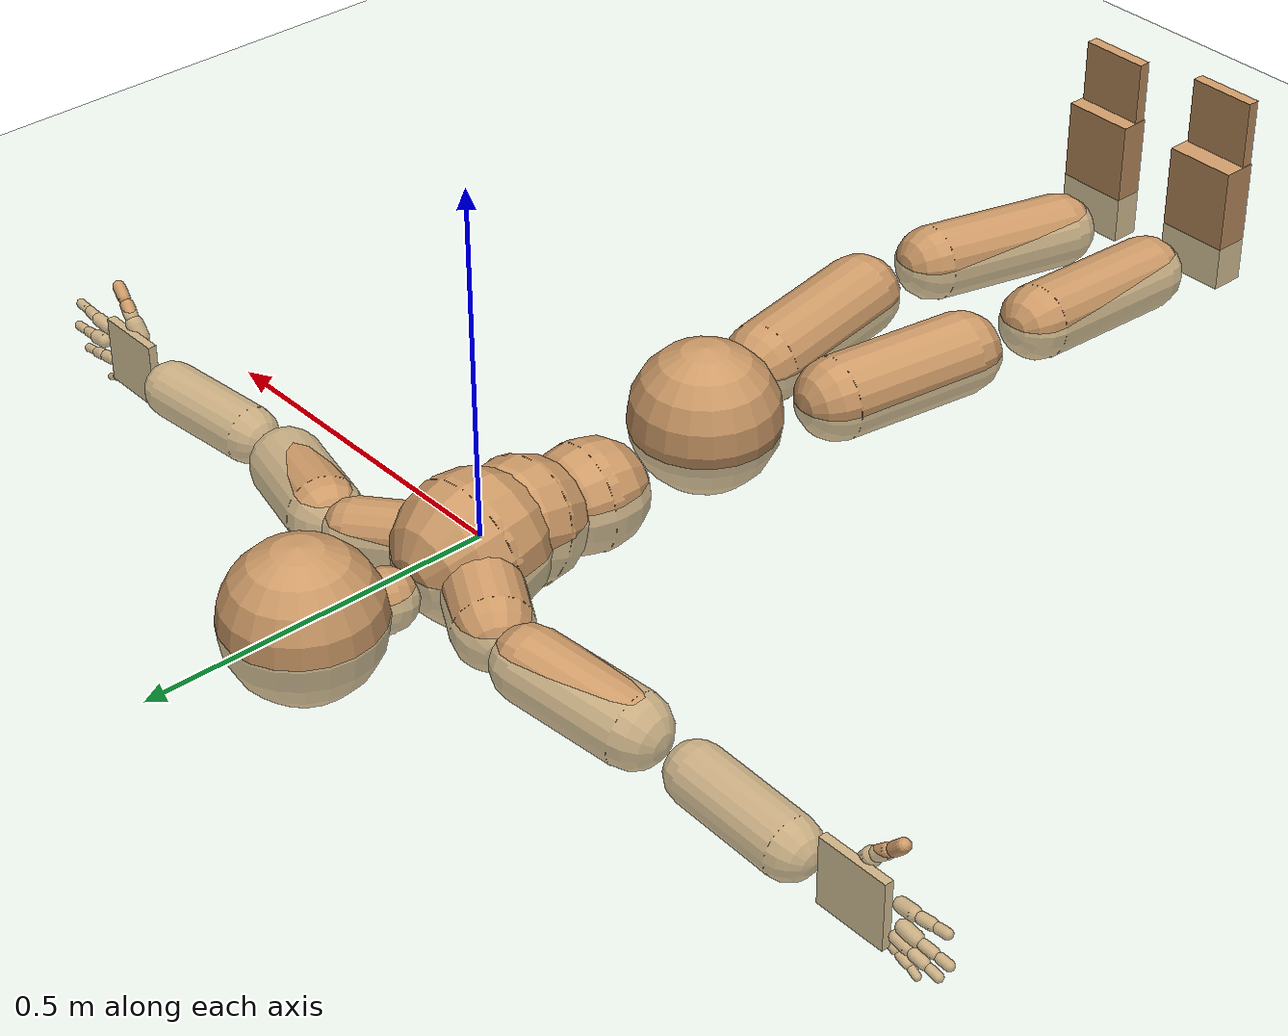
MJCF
<mujoco model="humanoid">
  <compiler coordinate="local"/>
  <default>
    <joint damping="0.0" armature="0.01" stiffness="0.0" limited="true"/>
    <geom conaffinity="1" condim="3" contype="7" margin="0.001" rgba="0.8 0.6 .4 1"/>
  </default>
  <asset>
    <texture type="skybox" builtin="gradient" rgb1=".4 .5 .6" rgb2="0 0 0" width="100" height="100"/>
    <texture builtin="flat" height="1278" mark="cross" markrgb="1 1 1" name="texgeom" random="0.01" rgb1="0.8 0.6 0.4" rgb2="0.8 0.6 0.4" type="cube" width="127"/>
    <texture builtin="checker" height="100" name="texplane" rgb1="0 0 0" rgb2="0.8 0.8 0.8" type="2d" width="100"/>
    <material name="MatPlane" reflectance="0.5" shininess="1" specular="1" texrepeat="60 60" texture="texplane"/>
    <material name="geom" texture="texgeom" texuniform="true"/>
  </asset>
  <worldbody>
    <light cutoff="100" diffuse="1 1 1" dir="-0 0 -1.3" directional="true" exponent="1" pos="0 0 1.3" specular=".1 .1 .1"/>
    <geom conaffinity="1" condim="3" name="floor" pos="0 0 0" rgba="0.8 0.9 0.8 1" size="100 100 .2" type="plane" material="MatPlane"/>
    <body name="Pelvis" pos="0.0013 -0.38 0.0136">
      <freejoint name="Pelvis"/>
      <geom type="sphere" contype="1" conaffinity="1" density="4629.6296296296305" size="0.1049" pos="0.0000 0.0000 0.0000" name="Pelvis"/>
      <body name="L_Hip" pos="0.0549 -0.0969 -0.0231">
        <joint name="L_Hip_x" type="hinge" pos="0 0 0" axis="1 0 0" stiffness="800" damping="80" armature="0.02" range="-90.0000 90.0000"/>
        <joint name="L_Hip_y" type="hinge" pos="0 0 0" axis="0 1 0" stiffness="800" damping="80" armature="0.02" range="-90.0000 90.0000"/>
        <joint name="L_Hip_z" type="hinge" pos="0 0 0" axis="0 0 1" stiffness="800" damping="80" armature="0.02" range="-90.0000 90.0000"/>
        <geom type="capsule" contype="1" conaffinity="1" density="2040.816327" fromto="0.0127 -0.0722 0.0007 0.0506 -0.2888 0.0028" size="0.0591" name="L_Hip"/>
        <body name="L_Knee" pos="0.0633 -0.361 0.0035">
          <joint name="L_Knee_x" type="hinge" pos="0 0 0" axis="1 0 0" stiffness="800" damping="80" armature="0.02" range="-180.0000 180.0000"/>
          <joint name="L_Knee_y" type="hinge" pos="0 0 0" axis="0 1 0" stiffness="800" damping="80" armature="0.02" range="-5.6250 5.6250"/>
          <joint name="L_Knee_z" type="hinge" pos="0 0 0" axis="0 0 1" stiffness="800" damping="80" armature="0.02" range="-5.6250 5.6250"/>
          <geom type="capsule" contype="1" conaffinity="1" density="1234.567901" fromto="-0.0099 -0.0777 -0.0077 -0.0395 -0.3108 -0.0309" size="0.0544" name="L_Knee"/>
          <body name="L_Ankle" pos="-0.0493 -0.3885 -0.0386">
            <joint name="L_Ankle_x" type="hinge" pos="0 0 0" axis="1 0 0" stiffness="800" damping="80" armature="0.02" range="-90.0000 90.0000"/>
            <joint name="L_Ankle_y" type="hinge" pos="0 0 0" axis="0 1 0" stiffness="800" damping="80" armature="0.02" range="-90.0000 90.0000"/>
            <joint name="L_Ankle_z" type="hinge" pos="0 0 0" axis="0 0 1" stiffness="800" damping="80" armature="0.02" range="-90.0000 90.0000"/>
            <geom type="box" contype="1" conaffinity="1" density="1000.000015" pos="0.0221 -0.0286 0.0672" size="0.053 0.0211 0.0945" quat="1.0000 0.0000 0.0000 0.0000" name="L_Ankle"/>
            <body name="L_Toe" pos="0.0442 -0.0571 0.1344">
              <joint name="L_Toe_x" type="hinge" pos="0 0 0" axis="1 0 0" stiffness="500" damping="50" armature="0.02" range="-90.0000 90.0000"/>
              <joint name="L_Toe_y" type="hinge" pos="0 0 0" axis="0 1 0" stiffness="500" damping="50" armature="0.02" range="-45.0000 45.0000"/>
              <joint name="L_Toe_z" type="hinge" pos="0 0 0" axis="0 0 1" stiffness="500" damping="50" armature="0.02" range="-45.0000 45.0000"/>
              <geom type="box" contype="1" conaffinity="1" density="1000.000007" pos="-0.0221 0.0165 0.0682" size="0.0511 0.009 0.0525" quat="1.0000 0.0000 0.0000 0.0000" name="L_Toe"/>
            </body>
          </body>
        </body>
      </body>
      <body name="R_Hip" pos="-0.0564 -0.1082 -0.0163">
        <joint name="R_Hip_x" type="hinge" pos="0 0 0" axis="1 0 0" stiffness="800" damping="80" armature="0.02" range="-90.0000 90.0000"/>
        <joint name="R_Hip_y" type="hinge" pos="0 0 0" axis="0 1 0" stiffness="800" damping="80" armature="0.02" range="-90.0000 90.0000"/>
        <joint name="R_Hip_z" type="hinge" pos="0 0 0" axis="0 0 1" stiffness="800" damping="80" armature="0.02" range="-90.0000 90.0000"/>
        <geom type="capsule" contype="1" conaffinity="1" density="2040.816327" fromto="-0.0094 -0.0689 -0.0009 -0.0375 -0.2756 -0.0035" size="0.059" name="R_Hip"/>
        <body name="R_Knee" pos="-0.0468 -0.3445 -0.0044">
          <joint name="R_Knee_x" type="hinge" pos="0 0 0" axis="1 0 0" stiffness="800" damping="80" armature="0.02" range="-180.0000 180.0000"/>
          <joint name="R_Knee_y" type="hinge" pos="0 0 0" axis="0 1 0" stiffness="800" damping="80" armature="0.02" range="-5.6250 5.6250"/>
          <joint name="R_Knee_z" type="hinge" pos="0 0 0" axis="0 0 1" stiffness="800" damping="80" armature="0.02" range="-5.6250 5.6250"/>
          <geom type="capsule" contype="1" conaffinity="1" density="1234.567901" fromto="0.0039 -0.0801 -0.0074 0.0157 -0.3205 -0.0298" size="0.0541" name="R_Knee"/>
          <body name="R_Ankle" pos="0.0196 -0.4006 -0.0372">
            <joint name="R_Ankle_x" type="hinge" pos="0 0 0" axis="1 0 0" stiffness="800" damping="80" armature="0.02" range="-90.0000 90.0000"/>
            <joint name="R_Ankle_y" type="hinge" pos="0 0 0" axis="0 1 0" stiffness="800" damping="80" armature="0.02" range="-90.0000 90.0000"/>
            <joint name="R_Ankle_z" type="hinge" pos="0 0 0" axis="0 0 1" stiffness="800" damping="80" armature="0.02" range="-90.0000 90.0000"/>
            <geom type="box" contype="1" conaffinity="1" density="999.999987" pos="-0.0172 -0.0282 0.0707" size="0.053 0.0252 0.0945" quat="1.0000 0.0000 0.0000 0.0000" name="R_Ankle"/>
            <body name="R_Toe" pos="-0.0344 -0.0564 0.1413">
              <joint name="R_Toe_x" type="hinge" pos="0 0 0" axis="1 0 0" stiffness="500" damping="50" armature="0.02" range="-90.0000 90.0000"/>
              <joint name="R_Toe_y" type="hinge" pos="0 0 0" axis="0 1 0" stiffness="500" damping="50" armature="0.02" range="-45.0000 45.0000"/>
              <joint name="R_Toe_z" type="hinge" pos="0 0 0" axis="0 0 1" stiffness="500" damping="50" armature="0.02" range="-45.0000 45.0000"/>
              <geom type="box" contype="1" conaffinity="1" density="1000.000005" pos="0.0172 0.0118 0.0717" size="0.0511 0.0088 0.0525" quat="1.0000 0.0000 0.0000 0.0000" name="R_Toe"/>
            </body>
          </body>
        </body>
      </body>
      <body name="Torso" pos="-0.0026 0.1184 -0.0391">
        <joint name="Torso_x" type="hinge" pos="0 0 0" axis="1 0 0" stiffness="1000" damping="100" armature="0.02" range="-60.0000 60.0000"/>
        <joint name="Torso_y" type="hinge" pos="0 0 0" axis="0 1 0" stiffness="1000" damping="100" armature="0.02" range="-60.0000 60.0000"/>
        <joint name="Torso_z" type="hinge" pos="0 0 0" axis="0 0 1" stiffness="1000" damping="100" armature="0.02" range="-60.0000 60.0000"/>
        <geom type="capsule" contype="1" conaffinity="1" density="2040.816327" fromto="0.0053 0.0733 0.0010 0.0065 0.0896 0.0012" size="0.0759" name="Torso"/>
        <body name="Spine" pos="0.0118 0.1628 0.0022">
          <joint name="Spine_x" type="hinge" pos="0 0 0" axis="1 0 0" stiffness="1000" damping="100" armature="0.02" range="-60.0000 60.0000"/>
          <joint name="Spine_y" type="hinge" pos="0 0 0" axis="0 1 0" stiffness="1000" damping="100" armature="0.02" range="-60.0000 60.0000"/>
          <joint name="Spine_z" type="hinge" pos="0 0 0" axis="0 0 1" stiffness="1000" damping="100" armature="0.02" range="-60.0000 60.0000"/>
          <geom type="capsule" contype="1" conaffinity="1" density="2040.816327" fromto="-0.0043 0.0272 0.0088 -0.0053 0.0332 0.0107" size="0.0883" name="Spine"/>
          <body name="Chest" pos="-0.0096 0.0604 0.0195">
            <joint name="Chest_x" type="hinge" pos="0 0 0" axis="1 0 0" stiffness="1000" damping="100" armature="0.02" range="-60.0000 60.0000"/>
            <joint name="Chest_y" type="hinge" pos="0 0 0" axis="0 1 0" stiffness="1000" damping="100" armature="0.02" range="-60.0000 60.0000"/>
            <joint name="Chest_z" type="hinge" pos="0 0 0" axis="0 0 1" stiffness="1000" damping="100" armature="0.02" range="-60.0000 60.0000"/>
            <geom type="capsule" contype="1" conaffinity="1" density="2040.816327" fromto="-0.0018 0.0470 -0.0052 -0.0022 0.0574 -0.0064" size="0.1014" name="Chest"/>
            <body name="Neck" pos="-0.0086 0.162 -0.023">
              <joint name="Neck_x" type="hinge" pos="0 0 0" axis="1 0 0" stiffness="500" damping="50" armature="0.02" range="-180.0000 180.0000"/>
              <joint name="Neck_y" type="hinge" pos="0 0 0" axis="0 1 0" stiffness="500" damping="50" armature="0.02" range="-180.0000 180.0000"/>
              <joint name="Neck_z" type="hinge" pos="0 0 0" axis="0 0 1" stiffness="500" damping="50" armature="0.02" range="-180.0000 180.0000"/>
              <geom type="capsule" contype="1" conaffinity="1" density="1000" fromto="0.0045 0.0277 0.0041 0.0181 0.1108 0.0165" size="0.0429" name="Neck"/>
              <body name="Head" pos="0.0226 0.1385 0.0206">
                <joint name="Head_x" type="hinge" pos="0 0 0" axis="1 0 0" stiffness="500" damping="50" armature="0.02" range="-90.0000 90.0000"/>
                <joint name="Head_y" type="hinge" pos="0 0 0" axis="0 1 0" stiffness="500" damping="50" armature="0.02" range="-90.0000 90.0000"/>
                <joint name="Head_z" type="hinge" pos="0 0 0" axis="0 0 1" stiffness="500" damping="50" armature="0.02" range="-90.0000 90.0000"/>
                <geom type="sphere" contype="1" conaffinity="1" density="1000" size="0.1076" pos="0.0000 0.0000 0.0000" name="Head"/>
              </body>
            </body>
            <body name="L_Thorax" pos="0.0379 0.0752 -0.004">
              <joint name="L_Thorax_x" type="hinge" pos="0 0 0" axis="1 0 0" stiffness="500" damping="50" armature="0.02" range="-180.0000 180.0000"/>
              <joint name="L_Thorax_y" type="hinge" pos="0 0 0" axis="0 1 0" stiffness="500" damping="50" armature="0.02" range="-180.0000 180.0000"/>
              <joint name="L_Thorax_z" type="hinge" pos="0 0 0" axis="0 0 1" stiffness="500" damping="50" armature="0.02" range="-180.0000 180.0000"/>
              <geom type="capsule" contype="1" conaffinity="1" density="1000" fromto="0.0250 0.0131 -0.0042 0.1001 0.0524 -0.0168" size="0.0455" name="L_Thorax"/>
              <body name="L_Shoulder" pos="0.1251 0.0655 -0.021">
                <joint name="L_Shoulder_x" type="hinge" pos="0 0 0" axis="1 0 0" stiffness="500" damping="50" armature="0.02" range="-180.0000 180.0000"/>
                <joint name="L_Shoulder_y" type="hinge" pos="0 0 0" axis="0 1 0" stiffness="500" damping="50" armature="0.02" range="-180.0000 180.0000"/>
                <joint name="L_Shoulder_z" type="hinge" pos="0 0 0" axis="0 0 1" stiffness="500" damping="50" armature="0.02" range="-180.0000 180.0000"/>
                <geom type="capsule" contype="1" conaffinity="1" density="1000" fromto="0.0489 -0.0152 -0.0078 0.1957 -0.0610 -0.0310" size="0.0516" name="L_Shoulder"/>
                <body name="L_Elbow" pos="0.2447 -0.0762 -0.0388">
                  <joint name="L_Elbow_x" type="hinge" pos="0 0 0" axis="1 0 0" stiffness="500" damping="50" armature="0.02" range="-720.0000 720.0000"/>
                  <joint name="L_Elbow_y" type="hinge" pos="0 0 0" axis="0 1 0" stiffness="500" damping="50" armature="0.02" range="-720.0000 720.0000"/>
                  <joint name="L_Elbow_z" type="hinge" pos="0 0 0" axis="0 0 1" stiffness="500" damping="50" armature="0.02" range="-720.0000 720.0000"/>
                  <geom type="capsule" contype="1" conaffinity="1" density="1000" fromto="0.0537 0.0049 -0.0003 0.2149 0.0198 -0.0013" size="0.0403" name="L_Elbow"/>
                  <body name="L_Wrist" pos="0.2686 0.0247 -0.0016">
                    <joint name="L_Wrist_x" type="hinge" pos="0 0 0" axis="1 0 0" stiffness="300" damping="30" armature="0.02" range="-180.0000 180.0000"/>
                    <joint name="L_Wrist_y" type="hinge" pos="0 0 0" axis="0 1 0" stiffness="300" damping="30" armature="0.02" range="-180.0000 180.0000"/>
                    <joint name="L_Wrist_z" type="hinge" pos="0 0 0" axis="0 0 1" stiffness="300" damping="30" armature="0.02" range="-180.0000 180.0000"/>
                    <geom type="box" contype="1" conaffinity="1" density="2541.499907" pos="0.0456 -0.0061 -0.0030" size="0.0516 0.0062 0.0494" quat="1.0000 0.0000 0.0000 0.0000" name="L_Wrist"/>
                    <body name="L_Index1" pos="0.1073 -0.0096 0.0213">
                      <joint name="L_Index1_x" type="hinge" pos="0 0 0" axis="1 0 0" stiffness="100" damping="10" armature="0.02" range="-180.0000 180.0000"/>
                      <joint name="L_Index1_y" type="hinge" pos="0 0 0" axis="0 1 0" stiffness="100" damping="10" armature="0.02" range="-180.0000 180.0000"/>
                      <joint name="L_Index1_z" type="hinge" pos="0 0 0" axis="0 0 1" stiffness="100" damping="10" armature="0.02" range="-180.0000 180.0000"/>
                      <geom type="capsule" contype="1" conaffinity="1" density="1000" fromto="0.0068 0.0003 0.0008 0.0271 0.0013 0.0030" size="0.0097" name="L_Index1"/>
                      <body name="L_Index2" pos="0.0339 0.0016 0.0038">
                        <joint name="L_Index2_x" type="hinge" pos="0 0 0" axis="1 0 0" stiffness="100" damping="10" armature="0.02" range="-180.0000 180.0000"/>
                        <joint name="L_Index2_y" type="hinge" pos="0 0 0" axis="0 1 0" stiffness="100" damping="10" armature="0.02" range="-180.0000 180.0000"/>
                        <joint name="L_Index2_z" type="hinge" pos="0 0 0" axis="0 0 1" stiffness="100" damping="10" armature="0.02" range="-180.0000 180.0000"/>
                        <geom type="capsule" contype="1" conaffinity="1" density="1000" fromto="0.0048 -0.0006 -0.0001 0.0190 -0.0023 -0.0003" size="0.0079" name="L_Index2"/>
                        <body name="L_Index3" pos="0.0238 -0.0028 -0.0004">
                          <joint name="L_Index3_x" type="hinge" pos="0 0 0" axis="1 0 0" stiffness="100" damping="10" armature="0.02" range="-180.0000 180.0000"/>
                          <joint name="L_Index3_y" type="hinge" pos="0 0 0" axis="0 1 0" stiffness="100" damping="10" armature="0.02" range="-180.0000 180.0000"/>
                          <joint name="L_Index3_z" type="hinge" pos="0 0 0" axis="0 0 1" stiffness="100" damping="10" armature="0.02" range="-180.0000 180.0000"/>
                          <geom type="capsule" contype="1" conaffinity="1" density="1000" fromto="0.0052 -0.0002 0.0003 0.0206 -0.0007 0.0013" size="0.0067" name="L_Index3"/>
                        </body>
                      </body>
                    </body>
                    <body name="L_Middle1" pos="0.1154 -0.0066 -0.0034">
                      <joint name="L_Middle1_x" type="hinge" pos="0 0 0" axis="1 0 0" stiffness="100" damping="10" armature="0.02" range="-180.0000 180.0000"/>
                      <joint name="L_Middle1_y" type="hinge" pos="0 0 0" axis="0 1 0" stiffness="100" damping="10" armature="0.02" range="-180.0000 180.0000"/>
                      <joint name="L_Middle1_z" type="hinge" pos="0 0 0" axis="0 0 1" stiffness="100" damping="10" armature="0.02" range="-180.0000 180.0000"/>
                      <geom type="capsule" contype="1" conaffinity="1" density="1000" fromto="0.0065 0.0001 -0.0008 0.0258 0.0004 -0.0034" size="0.01" name="L_Middle1"/>
                      <body name="L_Middle2" pos="0.0323 0.0005 -0.0042">
                        <joint name="L_Middle2_x" type="hinge" pos="0 0 0" axis="1 0 0" stiffness="100" damping="10" armature="0.02" range="-180.0000 180.0000"/>
                        <joint name="L_Middle2_y" type="hinge" pos="0 0 0" axis="0 1 0" stiffness="100" damping="10" armature="0.02" range="-180.0000 180.0000"/>
                        <joint name="L_Middle2_z" type="hinge" pos="0 0 0" axis="0 0 1" stiffness="100" damping="10" armature="0.02" range="-180.0000 180.0000"/>
                        <geom type="capsule" contype="1" conaffinity="1" density="1000" fromto="0.0049 -0.0005 -0.0009 0.0197 -0.0020 -0.0036" size="0.0074" name="L_Middle2"/>
                        <body name="L_Middle3" pos="0.0246 -0.0025 -0.0045">
                          <joint name="L_Middle3_x" type="hinge" pos="0 0 0" axis="1 0 0" stiffness="100" damping="10" armature="0.02" range="-180.0000 180.0000"/>
                          <joint name="L_Middle3_y" type="hinge" pos="0 0 0" axis="0 1 0" stiffness="100" damping="10" armature="0.02" range="-180.0000 180.0000"/>
                          <joint name="L_Middle3_z" type="hinge" pos="0 0 0" axis="0 0 1" stiffness="100" damping="10" armature="0.02" range="-180.0000 180.0000"/>
                          <geom type="capsule" contype="1" conaffinity="1" density="1000" fromto="0.0053 -0.0001 -0.0005 0.0213 -0.0004 -0.0020" size="0.0066" name="L_Middle3"/>
                        </body>
                      </body>
                    </body>
                    <body name="L_Pinky1" pos="0.0884 -0.0152 -0.0469">
                      <joint name="L_Pinky1_x" type="hinge" pos="0 0 0" axis="1 0 0" stiffness="100" damping="10" armature="0.02" range="-180.0000 180.0000"/>
                      <joint name="L_Pinky1_y" type="hinge" pos="0 0 0" axis="0 1 0" stiffness="100" damping="10" armature="0.02" range="-180.0000 180.0000"/>
                      <joint name="L_Pinky1_z" type="hinge" pos="0 0 0" axis="0 0 1" stiffness="100" damping="10" armature="0.02" range="-180.0000 180.0000"/>
                      <geom type="capsule" contype="1" conaffinity="1" density="1000" fromto="0.0034 -0.0004 -0.0024 0.0137 -0.0015 -0.0097" size="0.0072" name="L_Pinky1"/>
                      <body name="L_Pinky2" pos="0.0171 -0.0019 -0.0121">
                        <joint name="L_Pinky2_x" type="hinge" pos="0 0 0" axis="1 0 0" stiffness="100" damping="10" armature="0.02" range="-180.0000 180.0000"/>
                        <joint name="L_Pinky2_y" type="hinge" pos="0 0 0" axis="0 1 0" stiffness="100" damping="10" armature="0.02" range="-180.0000 180.0000"/>
                        <joint name="L_Pinky2_z" type="hinge" pos="0 0 0" axis="0 0 1" stiffness="100" damping="10" armature="0.02" range="-180.0000 180.0000"/>
                        <geom type="capsule" contype="1" conaffinity="1" density="1000" fromto="0.0034 -0.0004 -0.0023 0.0134 -0.0017 -0.0091" size="0.0068" name="L_Pinky2"/>
                        <body name="L_Pinky3" pos="0.0168 -0.0022 -0.0113">
                          <joint name="L_Pinky3_x" type="hinge" pos="0 0 0" axis="1 0 0" stiffness="100" damping="10" armature="0.02" range="-180.0000 180.0000"/>
                          <joint name="L_Pinky3_y" type="hinge" pos="0 0 0" axis="0 1 0" stiffness="100" damping="10" armature="0.02" range="-180.0000 180.0000"/>
                          <joint name="L_Pinky3_z" type="hinge" pos="0 0 0" axis="0 0 1" stiffness="100" damping="10" armature="0.02" range="-180.0000 180.0000"/>
                          <geom type="capsule" contype="1" conaffinity="1" density="1000" fromto="0.0038 -0.0000 -0.0019 0.0150 -0.0001 -0.0075" size="0.0052" name="L_Pinky3"/>
                        </body>
                      </body>
                    </body>
                    <body name="L_Ring1" pos="0.1026 -0.0094 -0.0289">
                      <joint name="L_Ring1_x" type="hinge" pos="0 0 0" axis="1 0 0" stiffness="100" damping="10" armature="0.02" range="-180.0000 180.0000"/>
                      <joint name="L_Ring1_y" type="hinge" pos="0 0 0" axis="0 1 0" stiffness="100" damping="10" armature="0.02" range="-180.0000 180.0000"/>
                      <joint name="L_Ring1_z" type="hinge" pos="0 0 0" axis="0 0 1" stiffness="100" damping="10" armature="0.02" range="-180.0000 180.0000"/>
                      <geom type="capsule" contype="1" conaffinity="1" density="1000" fromto="0.0060 0.0002 -0.0010 0.0239 0.0006 -0.0040" size="0.0085" name="L_Ring1"/>
                      <body name="L_Ring2" pos="0.0298 0.0008 -0.005">
                        <joint name="L_Ring2_x" type="hinge" pos="0 0 0" axis="1 0 0" stiffness="100" damping="10" armature="0.02" range="-180.0000 180.0000"/>
                        <joint name="L_Ring2_y" type="hinge" pos="0 0 0" axis="0 1 0" stiffness="100" damping="10" armature="0.02" range="-180.0000 180.0000"/>
                        <joint name="L_Ring2_z" type="hinge" pos="0 0 0" axis="0 0 1" stiffness="100" damping="10" armature="0.02" range="-180.0000 180.0000"/>
                        <geom type="capsule" contype="1" conaffinity="1" density="1000" fromto="0.0048 -0.0004 -0.0014 0.0192 -0.0018 -0.0055" size="0.0079" name="L_Ring2"/>
                        <body name="L_Ring3" pos="0.024 -0.0022 -0.0068">
                          <joint name="L_Ring3_x" type="hinge" pos="0 0 0" axis="1 0 0" stiffness="100" damping="10" armature="0.02" range="-180.0000 180.0000"/>
                          <joint name="L_Ring3_y" type="hinge" pos="0 0 0" axis="0 1 0" stiffness="100" damping="10" armature="0.02" range="-180.0000 180.0000"/>
                          <joint name="L_Ring3_z" type="hinge" pos="0 0 0" axis="0 0 1" stiffness="100" damping="10" armature="0.02" range="-180.0000 180.0000"/>
                          <geom type="capsule" contype="1" conaffinity="1" density="1000" fromto="0.0052 -0.0000 -0.0010 0.0208 -0.0002 -0.0039" size="0.0061" name="L_Ring3"/>
                        </body>
                      </body>
                    </body>
                    <body name="L_Thumb1" pos="0.0425 -0.0203 0.0275">
                      <joint name="L_Thumb1_x" type="hinge" pos="0 0 0" axis="1 0 0" stiffness="100" damping="10" armature="0.02" range="-180.0000 180.0000"/>
                      <joint name="L_Thumb1_y" type="hinge" pos="0 0 0" axis="0 1 0" stiffness="100" damping="10" armature="0.02" range="-180.0000 180.0000"/>
                      <joint name="L_Thumb1_z" type="hinge" pos="0 0 0" axis="0 0 1" stiffness="100" damping="10" armature="0.02" range="-180.0000 180.0000"/>
                      <geom type="capsule" contype="1" conaffinity="1" density="1000" fromto="0.0035 0.0004 0.0054 0.0141 0.0014 0.0217" size="0.0127" name="L_Thumb1"/>
                      <body name="L_Thumb2" pos="0.0176 0.0018 0.0271">
                        <joint name="L_Thumb2_x" type="hinge" pos="0 0 0" axis="1 0 0" stiffness="100" damping="10" armature="0.02" range="-180.0000 180.0000"/>
                        <joint name="L_Thumb2_y" type="hinge" pos="0 0 0" axis="0 1 0" stiffness="100" damping="10" armature="0.02" range="-180.0000 180.0000"/>
                        <joint name="L_Thumb2_z" type="hinge" pos="0 0 0" axis="0 0 1" stiffness="100" damping="10" armature="0.02" range="-180.0000 180.0000"/>
                        <geom type="capsule" contype="1" conaffinity="1" density="1000" fromto="0.0042 -0.0010 0.0034 0.0170 -0.0040 0.0137" size="0.0101" name="L_Thumb2"/>
                        <body name="L_Thumb3" pos="0.0212 -0.005 0.0171">
                          <joint name="L_Thumb3_x" type="hinge" pos="0 0 0" axis="1 0 0" stiffness="100" damping="10" armature="0.02" range="-180.0000 180.0000"/>
                          <joint name="L_Thumb3_y" type="hinge" pos="0 0 0" axis="0 1 0" stiffness="100" damping="10" armature="0.02" range="-180.0000 180.0000"/>
                          <joint name="L_Thumb3_z" type="hinge" pos="0 0 0" axis="0 0 1" stiffness="100" damping="10" armature="0.02" range="-180.0000 180.0000"/>
                          <geom type="capsule" contype="1" conaffinity="1" density="1000" fromto="0.0046 -0.0006 0.0038 0.0186 -0.0024 0.0153" size="0.0091" name="L_Thumb3"/>
                        </body>
                      </body>
                    </body>
                  </body>
                </body>
              </body>
            </body>
            <body name="R_Thorax" pos="-0.0411 0.0761 -0.0077">
              <joint name="R_Thorax_x" type="hinge" pos="0 0 0" axis="1 0 0" stiffness="500" damping="50" armature="0.02" range="-180.0000 180.0000"/>
              <joint name="R_Thorax_y" type="hinge" pos="0 0 0" axis="0 1 0" stiffness="500" damping="50" armature="0.02" range="-180.0000 180.0000"/>
              <joint name="R_Thorax_z" type="hinge" pos="0 0 0" axis="0 0 1" stiffness="500" damping="50" armature="0.02" range="-180.0000 180.0000"/>
              <geom type="capsule" contype="1" conaffinity="1" density="1000" fromto="-0.0232 0.0124 -0.0031 -0.0930 0.0495 -0.0124" size="0.054" name="R_Thorax"/>
              <body name="R_Shoulder" pos="-0.1162 0.0619 -0.0155">
                <joint name="R_Shoulder_x" type="hinge" pos="0 0 0" axis="1 0 0" stiffness="500" damping="50" armature="0.02" range="-180.0000 180.0000"/>
                <joint name="R_Shoulder_y" type="hinge" pos="0 0 0" axis="0 1 0" stiffness="500" damping="50" armature="0.02" range="-180.0000 180.0000"/>
                <joint name="R_Shoulder_z" type="hinge" pos="0 0 0" axis="0 0 1" stiffness="500" damping="50" armature="0.02" range="-180.0000 180.0000"/>
                <geom type="capsule" contype="1" conaffinity="1" density="1000" fromto="-0.0522 -0.0091 -0.0058 -0.2088 -0.0365 -0.0232" size="0.0509" name="R_Shoulder"/>
                <body name="R_Elbow" pos="-0.261 -0.0456 -0.029">
                  <joint name="R_Elbow_x" type="hinge" pos="0 0 0" axis="1 0 0" stiffness="500" damping="50" armature="0.02" range="-720.0000 720.0000"/>
                  <joint name="R_Elbow_y" type="hinge" pos="0 0 0" axis="0 1 0" stiffness="500" damping="50" armature="0.02" range="-720.0000 720.0000"/>
                  <joint name="R_Elbow_z" type="hinge" pos="0 0 0" axis="0 0 1" stiffness="500" damping="50" armature="0.02" range="-720.0000 720.0000"/>
                  <geom type="capsule" contype="1" conaffinity="1" density="1000" fromto="-0.0520 0.0001 -0.0024 -0.2082 0.0002 -0.0096" size="0.0413" name="R_Elbow"/>
                  <body name="R_Wrist" pos="-0.2602 0.0003 -0.012">
                    <joint name="R_Wrist_x" type="hinge" pos="0 0 0" axis="1 0 0" stiffness="300" damping="30" armature="0.02" range="-180.0000 180.0000"/>
                    <joint name="R_Wrist_y" type="hinge" pos="0 0 0" axis="0 1 0" stiffness="300" damping="30" armature="0.02" range="-180.0000 180.0000"/>
                    <joint name="R_Wrist_z" type="hinge" pos="0 0 0" axis="0 0 1" stiffness="300" damping="30" armature="0.02" range="-180.0000 180.0000"/>
                    <geom type="box" contype="1" conaffinity="1" density="2541.500138" pos="-0.0454 -0.0079 -0.0037" size="0.0531 0.0063 0.0494" quat="1.0000 0.0000 0.0000 0.0000" name="R_Wrist"/>
                    <body name="R_Index1" pos="-0.1068 -0.0131 0.02">
                      <joint name="R_Index1_x" type="hinge" pos="0 0 0" axis="1 0 0" stiffness="100" damping="10" armature="0.02" range="-180.0000 180.0000"/>
                      <joint name="R_Index1_y" type="hinge" pos="0 0 0" axis="0 1 0" stiffness="100" damping="10" armature="0.02" range="-180.0000 180.0000"/>
                      <joint name="R_Index1_z" type="hinge" pos="0 0 0" axis="0 0 1" stiffness="100" damping="10" armature="0.02" range="-180.0000 180.0000"/>
                      <geom type="capsule" contype="1" conaffinity="1" density="1000" fromto="-0.0068 0.0003 0.0008 -0.0271 0.0013 0.0030" size="0.0097" name="R_Index1"/>
                      <body name="R_Index2" pos="-0.0339 0.0016 0.0038">
                        <joint name="R_Index2_x" type="hinge" pos="0 0 0" axis="1 0 0" stiffness="100" damping="10" armature="0.02" range="-180.0000 180.0000"/>
                        <joint name="R_Index2_y" type="hinge" pos="0 0 0" axis="0 1 0" stiffness="100" damping="10" armature="0.02" range="-180.0000 180.0000"/>
                        <joint name="R_Index2_z" type="hinge" pos="0 0 0" axis="0 0 1" stiffness="100" damping="10" armature="0.02" range="-180.0000 180.0000"/>
                        <geom type="capsule" contype="1" conaffinity="1" density="1000" fromto="-0.0048 -0.0006 -0.0001 -0.0190 -0.0023 -0.0003" size="0.0079" name="R_Index2"/>
                        <body name="R_Index3" pos="-0.0238 -0.0028 -0.0004">
                          <joint name="R_Index3_x" type="hinge" pos="0 0 0" axis="1 0 0" stiffness="100" damping="10" armature="0.02" range="-180.0000 180.0000"/>
                          <joint name="R_Index3_y" type="hinge" pos="0 0 0" axis="0 1 0" stiffness="100" damping="10" armature="0.02" range="-180.0000 180.0000"/>
                          <joint name="R_Index3_z" type="hinge" pos="0 0 0" axis="0 0 1" stiffness="100" damping="10" armature="0.02" range="-180.0000 180.0000"/>
                          <geom type="capsule" contype="1" conaffinity="1" density="1000" fromto="-0.0044 -0.0002 0.0003 -0.0174 -0.0007 0.0013" size="0.007" name="R_Index3"/>
                        </body>
                      </body>
                    </body>
                    <body name="R_Middle1" pos="-0.115 -0.0101 -0.0047">
                      <joint name="R_Middle1_x" type="hinge" pos="0 0 0" axis="1 0 0" stiffness="100" damping="10" armature="0.02" range="-180.0000 180.0000"/>
                      <joint name="R_Middle1_y" type="hinge" pos="0 0 0" axis="0 1 0" stiffness="100" damping="10" armature="0.02" range="-180.0000 180.0000"/>
                      <joint name="R_Middle1_z" type="hinge" pos="0 0 0" axis="0 0 1" stiffness="100" damping="10" armature="0.02" range="-180.0000 180.0000"/>
                      <geom type="capsule" contype="1" conaffinity="1" density="1000" fromto="-0.0065 0.0001 -0.0008 -0.0258 0.0004 -0.0034" size="0.01" name="R_Middle1"/>
                      <body name="R_Middle2" pos="-0.0323 0.0005 -0.0042">
                        <joint name="R_Middle2_x" type="hinge" pos="0 0 0" axis="1 0 0" stiffness="100" damping="10" armature="0.02" range="-180.0000 180.0000"/>
                        <joint name="R_Middle2_y" type="hinge" pos="0 0 0" axis="0 1 0" stiffness="100" damping="10" armature="0.02" range="-180.0000 180.0000"/>
                        <joint name="R_Middle2_z" type="hinge" pos="0 0 0" axis="0 0 1" stiffness="100" damping="10" armature="0.02" range="-180.0000 180.0000"/>
                        <geom type="capsule" contype="1" conaffinity="1" density="1000" fromto="-0.0049 -0.0005 -0.0009 -0.0197 -0.0020 -0.0036" size="0.0074" name="R_Middle2"/>
                        <body name="R_Middle3" pos="-0.0246 -0.0025 -0.0045">
                          <joint name="R_Middle3_x" type="hinge" pos="0 0 0" axis="1 0 0" stiffness="100" damping="10" armature="0.02" range="-180.0000 180.0000"/>
                          <joint name="R_Middle3_y" type="hinge" pos="0 0 0" axis="0 1 0" stiffness="100" damping="10" armature="0.02" range="-180.0000 180.0000"/>
                          <joint name="R_Middle3_z" type="hinge" pos="0 0 0" axis="0 0 1" stiffness="100" damping="10" armature="0.02" range="-180.0000 180.0000"/>
                          <geom type="capsule" contype="1" conaffinity="1" density="1000" fromto="-0.0045 -0.0001 -0.0005 -0.0181 -0.0004 -0.0020" size="0.0068" name="R_Middle3"/>
                        </body>
                      </body>
                    </body>
                    <body name="R_Pinky1" pos="-0.088 -0.0187 -0.0481">
                      <joint name="R_Pinky1_x" type="hinge" pos="0 0 0" axis="1 0 0" stiffness="100" damping="10" armature="0.02" range="-180.0000 180.0000"/>
                      <joint name="R_Pinky1_y" type="hinge" pos="0 0 0" axis="0 1 0" stiffness="100" damping="10" armature="0.02" range="-180.0000 180.0000"/>
                      <joint name="R_Pinky1_z" type="hinge" pos="0 0 0" axis="0 0 1" stiffness="100" damping="10" armature="0.02" range="-180.0000 180.0000"/>
                      <geom type="capsule" contype="1" conaffinity="1" density="1000" fromto="-0.0034 -0.0004 -0.0024 -0.0137 -0.0015 -0.0097" size="0.0072" name="R_Pinky1"/>
                      <body name="R_Pinky2" pos="-0.0171 -0.0019 -0.0121">
                        <joint name="R_Pinky2_x" type="hinge" pos="0 0 0" axis="1 0 0" stiffness="100" damping="10" armature="0.02" range="-180.0000 180.0000"/>
                        <joint name="R_Pinky2_y" type="hinge" pos="0 0 0" axis="0 1 0" stiffness="100" damping="10" armature="0.02" range="-180.0000 180.0000"/>
                        <joint name="R_Pinky2_z" type="hinge" pos="0 0 0" axis="0 0 1" stiffness="100" damping="10" armature="0.02" range="-180.0000 180.0000"/>
                        <geom type="capsule" contype="1" conaffinity="1" density="1000" fromto="-0.0034 -0.0004 -0.0023 -0.0134 -0.0017 -0.0091" size="0.0068" name="R_Pinky2"/>
                        <body name="R_Pinky3" pos="-0.0168 -0.0022 -0.0113">
                          <joint name="R_Pinky3_x" type="hinge" pos="0 0 0" axis="1 0 0" stiffness="100" damping="10" armature="0.02" range="-180.0000 180.0000"/>
                          <joint name="R_Pinky3_y" type="hinge" pos="0 0 0" axis="0 1 0" stiffness="100" damping="10" armature="0.02" range="-180.0000 180.0000"/>
                          <joint name="R_Pinky3_z" type="hinge" pos="0 0 0" axis="0 0 1" stiffness="100" damping="10" armature="0.02" range="-180.0000 180.0000"/>
                          <geom type="capsule" contype="1" conaffinity="1" density="1000" fromto="-0.0030 -0.0000 -0.0019 -0.0118 -0.0001 -0.0075" size="0.0054" name="R_Pinky3"/>
                        </body>
                      </body>
                    </body>
                    <body name="R_Ring1" pos="-0.1021 -0.0129 -0.0301">
                      <joint name="R_Ring1_x" type="hinge" pos="0 0 0" axis="1 0 0" stiffness="100" damping="10" armature="0.02" range="-180.0000 180.0000"/>
                      <joint name="R_Ring1_y" type="hinge" pos="0 0 0" axis="0 1 0" stiffness="100" damping="10" armature="0.02" range="-180.0000 180.0000"/>
                      <joint name="R_Ring1_z" type="hinge" pos="0 0 0" axis="0 0 1" stiffness="100" damping="10" armature="0.02" range="-180.0000 180.0000"/>
                      <geom type="capsule" contype="1" conaffinity="1" density="1000" fromto="-0.0060 0.0002 -0.0010 -0.0239 0.0006 -0.0040" size="0.0085" name="R_Ring1"/>
                      <body name="R_Ring2" pos="-0.0298 0.0008 -0.005">
                        <joint name="R_Ring2_x" type="hinge" pos="0 0 0" axis="1 0 0" stiffness="100" damping="10" armature="0.02" range="-180.0000 180.0000"/>
                        <joint name="R_Ring2_y" type="hinge" pos="0 0 0" axis="0 1 0" stiffness="100" damping="10" armature="0.02" range="-180.0000 180.0000"/>
                        <joint name="R_Ring2_z" type="hinge" pos="0 0 0" axis="0 0 1" stiffness="100" damping="10" armature="0.02" range="-180.0000 180.0000"/>
                        <geom type="capsule" contype="1" conaffinity="1" density="1000" fromto="-0.0048 -0.0004 -0.0014 -0.0192 -0.0018 -0.0055" size="0.0079" name="R_Ring2"/>
                        <body name="R_Ring3" pos="-0.024 -0.0022 -0.0068">
                          <joint name="R_Ring3_x" type="hinge" pos="0 0 0" axis="1 0 0" stiffness="100" damping="10" armature="0.02" range="-180.0000 180.0000"/>
                          <joint name="R_Ring3_y" type="hinge" pos="0 0 0" axis="0 1 0" stiffness="100" damping="10" armature="0.02" range="-180.0000 180.0000"/>
                          <joint name="R_Ring3_z" type="hinge" pos="0 0 0" axis="0 0 1" stiffness="100" damping="10" armature="0.02" range="-180.0000 180.0000"/>
                          <geom type="capsule" contype="1" conaffinity="1" density="1000" fromto="-0.0044 -0.0000 -0.0010 -0.0176 -0.0002 -0.0039" size="0.0064" name="R_Ring3"/>
                        </body>
                      </body>
                    </body>
                    <body name="R_Thumb1" pos="-0.0421 -0.0238 0.0262">
                      <joint name="R_Thumb1_x" type="hinge" pos="0 0 0" axis="1 0 0" stiffness="100" damping="10" armature="0.02" range="-180.0000 180.0000"/>
                      <joint name="R_Thumb1_y" type="hinge" pos="0 0 0" axis="0 1 0" stiffness="100" damping="10" armature="0.02" range="-180.0000 180.0000"/>
                      <joint name="R_Thumb1_z" type="hinge" pos="0 0 0" axis="0 0 1" stiffness="100" damping="10" armature="0.02" range="-180.0000 180.0000"/>
                      <geom type="capsule" contype="1" conaffinity="1" density="1000" fromto="-0.0035 0.0004 0.0054 -0.0141 0.0014 0.0217" size="0.0127" name="R_Thumb1"/>
                      <body name="R_Thumb2" pos="-0.0176 0.0018 0.0271">
                        <joint name="R_Thumb2_x" type="hinge" pos="0 0 0" axis="1 0 0" stiffness="100" damping="10" armature="0.02" range="-180.0000 180.0000"/>
                        <joint name="R_Thumb2_y" type="hinge" pos="0 0 0" axis="0 1 0" stiffness="100" damping="10" armature="0.02" range="-180.0000 180.0000"/>
                        <joint name="R_Thumb2_z" type="hinge" pos="0 0 0" axis="0 0 1" stiffness="100" damping="10" armature="0.02" range="-180.0000 180.0000"/>
                        <geom type="capsule" contype="1" conaffinity="1" density="1000" fromto="-0.0042 -0.0010 0.0034 -0.0170 -0.0040 0.0137" size="0.0101" name="R_Thumb2"/>
                        <body name="R_Thumb3" pos="-0.0212 -0.005 0.0171">
                          <joint name="R_Thumb3_x" type="hinge" pos="0 0 0" axis="1 0 0" stiffness="100" damping="10" armature="0.02" range="-180.0000 180.0000"/>
                          <joint name="R_Thumb3_y" type="hinge" pos="0 0 0" axis="0 1 0" stiffness="100" damping="10" armature="0.02" range="-180.0000 180.0000"/>
                          <joint name="R_Thumb3_z" type="hinge" pos="0 0 0" axis="0 0 1" stiffness="100" damping="10" armature="0.02" range="-180.0000 180.0000"/>
                          <geom type="capsule" contype="1" conaffinity="1" density="1000" fromto="-0.0038 -0.0006 0.0038 -0.0154 -0.0024 0.0153" size="0.0094" name="R_Thumb3"/>
                        </body>
                      </body>
                    </body>
                  </body>
                </body>
              </body>
            </body>
          </body>
        </body>
      </body>
    </body>
  </worldbody>
  <actuator>
    <motor name="L_Hip_x" joint="L_Hip_x" gear="500"/>
    <motor name="L_Hip_y" joint="L_Hip_y" gear="500"/>
    <motor name="L_Hip_z" joint="L_Hip_z" gear="500"/>
    <motor name="L_Knee_x" joint="L_Knee_x" gear="500"/>
    <motor name="L_Knee_y" joint="L_Knee_y" gear="500"/>
    <motor name="L_Knee_z" joint="L_Knee_z" gear="500"/>
    <motor name="L_Ankle_x" joint="L_Ankle_x" gear="500"/>
    <motor name="L_Ankle_y" joint="L_Ankle_y" gear="500"/>
    <motor name="L_Ankle_z" joint="L_Ankle_z" gear="500"/>
    <motor name="L_Toe_x" joint="L_Toe_x" gear="500"/>
    <motor name="L_Toe_y" joint="L_Toe_y" gear="500"/>
    <motor name="L_Toe_z" joint="L_Toe_z" gear="500"/>
    <motor name="R_Hip_x" joint="R_Hip_x" gear="500"/>
    <motor name="R_Hip_y" joint="R_Hip_y" gear="500"/>
    <motor name="R_Hip_z" joint="R_Hip_z" gear="500"/>
    <motor name="R_Knee_x" joint="R_Knee_x" gear="500"/>
    <motor name="R_Knee_y" joint="R_Knee_y" gear="500"/>
    <motor name="R_Knee_z" joint="R_Knee_z" gear="500"/>
    <motor name="R_Ankle_x" joint="R_Ankle_x" gear="500"/>
    <motor name="R_Ankle_y" joint="R_Ankle_y" gear="500"/>
    <motor name="R_Ankle_z" joint="R_Ankle_z" gear="500"/>
    <motor name="R_Toe_x" joint="R_Toe_x" gear="500"/>
    <motor name="R_Toe_y" joint="R_Toe_y" gear="500"/>
    <motor name="R_Toe_z" joint="R_Toe_z" gear="500"/>
    <motor name="Torso_x" joint="Torso_x" gear="500"/>
    <motor name="Torso_y" joint="Torso_y" gear="500"/>
    <motor name="Torso_z" joint="Torso_z" gear="500"/>
    <motor name="Spine_x" joint="Spine_x" gear="500"/>
    <motor name="Spine_y" joint="Spine_y" gear="500"/>
    <motor name="Spine_z" joint="Spine_z" gear="500"/>
    <motor name="Chest_x" joint="Chest_x" gear="500"/>
    <motor name="Chest_y" joint="Chest_y" gear="500"/>
    <motor name="Chest_z" joint="Chest_z" gear="500"/>
    <motor name="Neck_x" joint="Neck_x" gear="500"/>
    <motor name="Neck_y" joint="Neck_y" gear="500"/>
    <motor name="Neck_z" joint="Neck_z" gear="500"/>
    <motor name="Head_x" joint="Head_x" gear="500"/>
    <motor name="Head_y" joint="Head_y" gear="500"/>
    <motor name="Head_z" joint="Head_z" gear="500"/>
    <motor name="L_Thorax_x" joint="L_Thorax_x" gear="500"/>
    <motor name="L_Thorax_y" joint="L_Thorax_y" gear="500"/>
    <motor name="L_Thorax_z" joint="L_Thorax_z" gear="500"/>
    <motor name="L_Shoulder_x" joint="L_Shoulder_x" gear="500"/>
    <motor name="L_Shoulder_y" joint="L_Shoulder_y" gear="500"/>
    <motor name="L_Shoulder_z" joint="L_Shoulder_z" gear="500"/>
    <motor name="L_Elbow_x" joint="L_Elbow_x" gear="500"/>
    <motor name="L_Elbow_y" joint="L_Elbow_y" gear="500"/>
    <motor name="L_Elbow_z" joint="L_Elbow_z" gear="500"/>
    <motor name="L_Wrist_x" joint="L_Wrist_x" gear="500"/>
    <motor name="L_Wrist_y" joint="L_Wrist_y" gear="500"/>
    <motor name="L_Wrist_z" joint="L_Wrist_z" gear="500"/>
    <motor name="L_Index1_x" joint="L_Index1_x" gear="500"/>
    <motor name="L_Index1_y" joint="L_Index1_y" gear="500"/>
    <motor name="L_Index1_z" joint="L_Index1_z" gear="500"/>
    <motor name="L_Index2_x" joint="L_Index2_x" gear="500"/>
    <motor name="L_Index2_y" joint="L_Index2_y" gear="500"/>
    <motor name="L_Index2_z" joint="L_Index2_z" gear="500"/>
    <motor name="L_Index3_x" joint="L_Index3_x" gear="500"/>
    <motor name="L_Index3_y" joint="L_Index3_y" gear="500"/>
    <motor name="L_Index3_z" joint="L_Index3_z" gear="500"/>
    <motor name="L_Middle1_x" joint="L_Middle1_x" gear="500"/>
    <motor name="L_Middle1_y" joint="L_Middle1_y" gear="500"/>
    <motor name="L_Middle1_z" joint="L_Middle1_z" gear="500"/>
    <motor name="L_Middle2_x" joint="L_Middle2_x" gear="500"/>
    <motor name="L_Middle2_y" joint="L_Middle2_y" gear="500"/>
    <motor name="L_Middle2_z" joint="L_Middle2_z" gear="500"/>
    <motor name="L_Middle3_x" joint="L_Middle3_x" gear="500"/>
    <motor name="L_Middle3_y" joint="L_Middle3_y" gear="500"/>
    <motor name="L_Middle3_z" joint="L_Middle3_z" gear="500"/>
    <motor name="L_Pinky1_x" joint="L_Pinky1_x" gear="500"/>
    <motor name="L_Pinky1_y" joint="L_Pinky1_y" gear="500"/>
    <motor name="L_Pinky1_z" joint="L_Pinky1_z" gear="500"/>
    <motor name="L_Pinky2_x" joint="L_Pinky2_x" gear="500"/>
    <motor name="L_Pinky2_y" joint="L_Pinky2_y" gear="500"/>
    <motor name="L_Pinky2_z" joint="L_Pinky2_z" gear="500"/>
    <motor name="L_Pinky3_x" joint="L_Pinky3_x" gear="500"/>
    <motor name="L_Pinky3_y" joint="L_Pinky3_y" gear="500"/>
    <motor name="L_Pinky3_z" joint="L_Pinky3_z" gear="500"/>
    <motor name="L_Ring1_x" joint="L_Ring1_x" gear="500"/>
    <motor name="L_Ring1_y" joint="L_Ring1_y" gear="500"/>
    <motor name="L_Ring1_z" joint="L_Ring1_z" gear="500"/>
    <motor name="L_Ring2_x" joint="L_Ring2_x" gear="500"/>
    <motor name="L_Ring2_y" joint="L_Ring2_y" gear="500"/>
    <motor name="L_Ring2_z" joint="L_Ring2_z" gear="500"/>
    <motor name="L_Ring3_x" joint="L_Ring3_x" gear="500"/>
    <motor name="L_Ring3_y" joint="L_Ring3_y" gear="500"/>
    <motor name="L_Ring3_z" joint="L_Ring3_z" gear="500"/>
    <motor name="L_Thumb1_x" joint="L_Thumb1_x" gear="500"/>
    <motor name="L_Thumb1_y" joint="L_Thumb1_y" gear="500"/>
    <motor name="L_Thumb1_z" joint="L_Thumb1_z" gear="500"/>
    <motor name="L_Thumb2_x" joint="L_Thumb2_x" gear="500"/>
    <motor name="L_Thumb2_y" joint="L_Thumb2_y" gear="500"/>
    <motor name="L_Thumb2_z" joint="L_Thumb2_z" gear="500"/>
    <motor name="L_Thumb3_x" joint="L_Thumb3_x" gear="500"/>
    <motor name="L_Thumb3_y" joint="L_Thumb3_y" gear="500"/>
    <motor name="L_Thumb3_z" joint="L_Thumb3_z" gear="500"/>
    <motor name="R_Thorax_x" joint="R_Thorax_x" gear="500"/>
    <motor name="R_Thorax_y" joint="R_Thorax_y" gear="500"/>
    <motor name="R_Thorax_z" joint="R_Thorax_z" gear="500"/>
    <motor name="R_Shoulder_x" joint="R_Shoulder_x" gear="500"/>
    <motor name="R_Shoulder_y" joint="R_Shoulder_y" gear="500"/>
    <motor name="R_Shoulder_z" joint="R_Shoulder_z" gear="500"/>
    <motor name="R_Elbow_x" joint="R_Elbow_x" gear="500"/>
    <motor name="R_Elbow_y" joint="R_Elbow_y" gear="500"/>
    <motor name="R_Elbow_z" joint="R_Elbow_z" gear="500"/>
    <motor name="R_Wrist_x" joint="R_Wrist_x" gear="500"/>
    <motor name="R_Wrist_y" joint="R_Wrist_y" gear="500"/>
    <motor name="R_Wrist_z" joint="R_Wrist_z" gear="500"/>
    <motor name="R_Index1_x" joint="R_Index1_x" gear="500"/>
    <motor name="R_Index1_y" joint="R_Index1_y" gear="500"/>
    <motor name="R_Index1_z" joint="R_Index1_z" gear="500"/>
    <motor name="R_Index2_x" joint="R_Index2_x" gear="500"/>
    <motor name="R_Index2_y" joint="R_Index2_y" gear="500"/>
    <motor name="R_Index2_z" joint="R_Index2_z" gear="500"/>
    <motor name="R_Index3_x" joint="R_Index3_x" gear="500"/>
    <motor name="R_Index3_y" joint="R_Index3_y" gear="500"/>
    <motor name="R_Index3_z" joint="R_Index3_z" gear="500"/>
    <motor name="R_Middle1_x" joint="R_Middle1_x" gear="500"/>
    <motor name="R_Middle1_y" joint="R_Middle1_y" gear="500"/>
    <motor name="R_Middle1_z" joint="R_Middle1_z" gear="500"/>
    <motor name="R_Middle2_x" joint="R_Middle2_x" gear="500"/>
    <motor name="R_Middle2_y" joint="R_Middle2_y" gear="500"/>
    <motor name="R_Middle2_z" joint="R_Middle2_z" gear="500"/>
    <motor name="R_Middle3_x" joint="R_Middle3_x" gear="500"/>
    <motor name="R_Middle3_y" joint="R_Middle3_y" gear="500"/>
    <motor name="R_Middle3_z" joint="R_Middle3_z" gear="500"/>
    <motor name="R_Pinky1_x" joint="R_Pinky1_x" gear="500"/>
    <motor name="R_Pinky1_y" joint="R_Pinky1_y" gear="500"/>
    <motor name="R_Pinky1_z" joint="R_Pinky1_z" gear="500"/>
    <motor name="R_Pinky2_x" joint="R_Pinky2_x" gear="500"/>
    <motor name="R_Pinky2_y" joint="R_Pinky2_y" gear="500"/>
    <motor name="R_Pinky2_z" joint="R_Pinky2_z" gear="500"/>
    <motor name="R_Pinky3_x" joint="R_Pinky3_x" gear="500"/>
    <motor name="R_Pinky3_y" joint="R_Pinky3_y" gear="500"/>
    <motor name="R_Pinky3_z" joint="R_Pinky3_z" gear="500"/>
    <motor name="R_Ring1_x" joint="R_Ring1_x" gear="500"/>
    <motor name="R_Ring1_y" joint="R_Ring1_y" gear="500"/>
    <motor name="R_Ring1_z" joint="R_Ring1_z" gear="500"/>
    <motor name="R_Ring2_x" joint="R_Ring2_x" gear="500"/>
    <motor name="R_Ring2_y" joint="R_Ring2_y" gear="500"/>
    <motor name="R_Ring2_z" joint="R_Ring2_z" gear="500"/>
    <motor name="R_Ring3_x" joint="R_Ring3_x" gear="500"/>
    <motor name="R_Ring3_y" joint="R_Ring3_y" gear="500"/>
    <motor name="R_Ring3_z" joint="R_Ring3_z" gear="500"/>
    <motor name="R_Thumb1_x" joint="R_Thumb1_x" gear="500"/>
    <motor name="R_Thumb1_y" joint="R_Thumb1_y" gear="500"/>
    <motor name="R_Thumb1_z" joint="R_Thumb1_z" gear="500"/>
    <motor name="R_Thumb2_x" joint="R_Thumb2_x" gear="500"/>
    <motor name="R_Thumb2_y" joint="R_Thumb2_y" gear="500"/>
    <motor name="R_Thumb2_z" joint="R_Thumb2_z" gear="500"/>
    <motor name="R_Thumb3_x" joint="R_Thumb3_x" gear="500"/>
    <motor name="R_Thumb3_y" joint="R_Thumb3_y" gear="500"/>
    <motor name="R_Thumb3_z" joint="R_Thumb3_z" gear="500"/>
  </actuator>
  <contact>
    <exclude body1="Torso" body2="Chest"/>
    <exclude body1="Head" body2="Chest"/>
    <exclude body1="R_Knee" body2="R_Toe"/>
    <exclude body1="R_Knee" body2="L_Ankle"/>
    <exclude body1="R_Knee" body2="L_Toe"/>
    <exclude body1="L_Knee" body2="L_Toe"/>
    <exclude body1="L_Knee" body2="R_Ankle"/>
    <exclude body1="L_Knee" body2="R_Toe"/>
    <exclude body1="L_Shoulder" body2="Chest"/>
    <exclude body1="R_Shoulder" body2="Chest"/>
  </contact>
  <sensor/>
  <size njmax="700" nconmax="700"/>
</mujoco>
